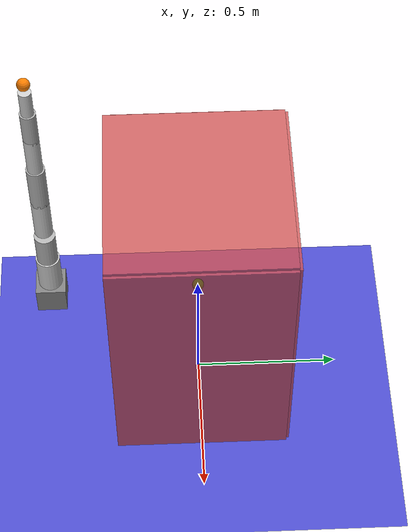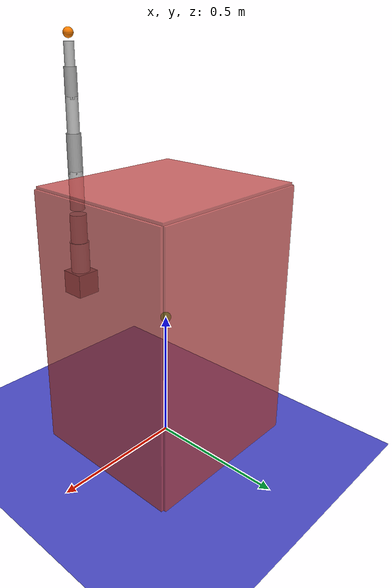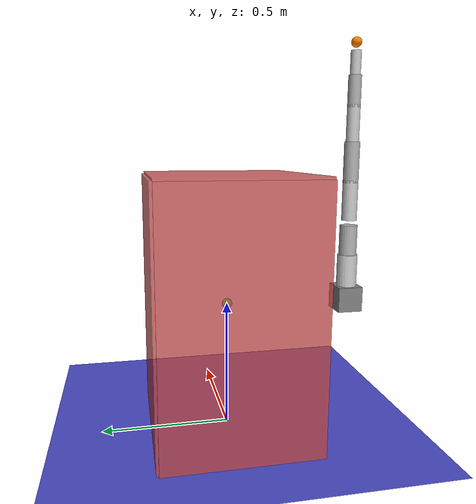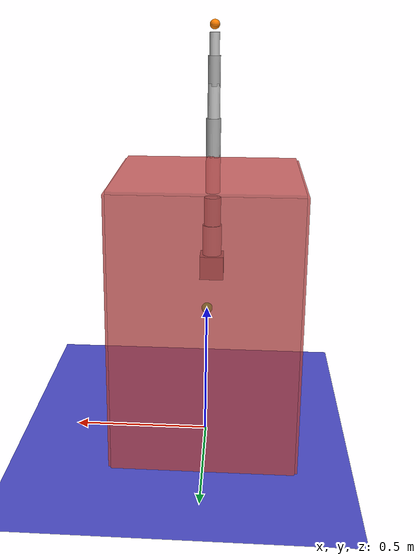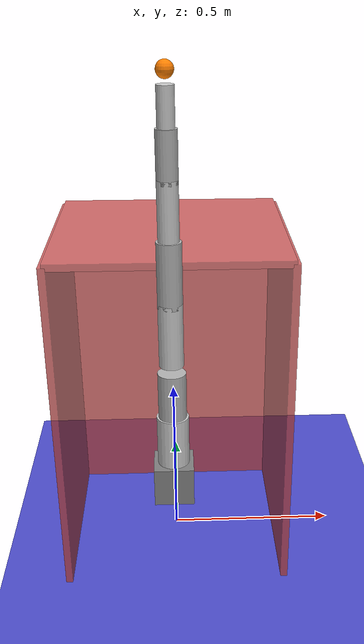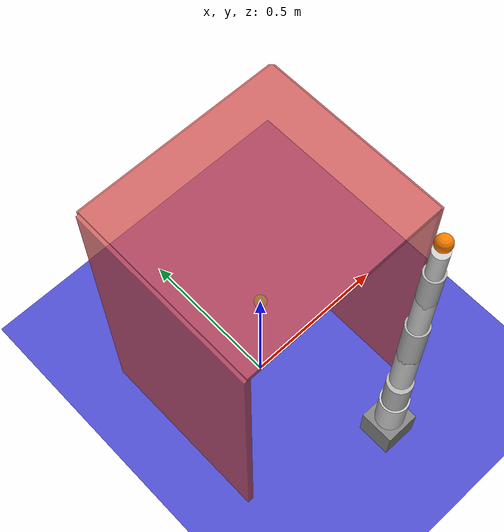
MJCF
<mujoco model="franka_tokamak">
  <include file="vessel.xml"/>
  <compiler inertiafromgeom="true"/>
  <option timestep="0.0005" gravity="0 0 -9.81"/>
  <worldbody>

    <!-- Franka base mounted at port entry -->
    <body name="base" pos="0 -0.5 0.5">
      <geom type="box" size="0.05 0.05 0.05" rgba="0.5 0.5 0.5 1"/>

      <body name="link1" pos="0 0 0.1">
        <joint name="j1" type="hinge" axis="0 0 1" range="-2.8 2.8"/>
        <geom type="cylinder" size="0.04 0.08" rgba="0.8 0.8 0.8 1"/>

        <body name="link2" pos="0 0 0.1">
          <joint name="j2" type="hinge" axis="0 1 0" range="-1.7 1.7"/>
          <geom type="cylinder" size="0.035 0.1" rgba="0.7 0.7 0.7 1"/>

          <body name="link3" pos="0 0 0.2">
            <joint name="j3" type="hinge" axis="0 0 1" range="-2.8 2.8"/>
            <geom type="cylinder" size="0.03 0.08" rgba="0.8 0.8 0.8 1"/>

            <body name="link4" pos="0 0 0.15">
              <joint name="j4" type="hinge" axis="0 1 0" range="-3.0 -0.07"/>
              <geom type="cylinder" size="0.03 0.08" rgba="0.7 0.7 0.7 1"/>

              <body name="link5" pos="0 0 0.15">
                <joint name="j5" type="hinge" axis="0 0 1" range="-2.8 2.8"/>
                <geom type="cylinder" size="0.025 0.07" rgba="0.8 0.8 0.8 1"/>

                <body name="link6" pos="0 0 0.12">
                  <joint name="j6" type="hinge" axis="0 1 0" range="-0.01 3.75"/>
                  <geom type="cylinder" size="0.025 0.06" rgba="0.7 0.7 0.7 1"/>

                  <body name="link7" pos="0 0 0.1">
                    <joint name="j7" type="hinge" axis="0 0 1" range="-2.8 2.8"/>
                    <geom type="cylinder" size="0.02 0.05" rgba="0.8 0.8 0.8 1"/>

                    <!-- End effector -->
                    <body name="ee_franka" pos="0 0 0.08">
                      <geom type="sphere" size="0.02" rgba="1.0 0.5 0.0 1"/>
                      <site name="ee_site_franka" pos="0 0 0"/>
                    </body>

                  </body>
                </body>
              </body>
            </body>
          </body>
        </body>
      </body>
    </body>
  </worldbody>

  <actuator>
    <velocity name="a1" joint="j1" kv="2"/>
    <velocity name="a2" joint="j2" kv="2"/>
    <velocity name="a3" joint="j3" kv="2"/>
    <velocity name="a4" joint="j4" kv="2"/>
    <velocity name="a5" joint="j5" kv="2"/>
    <velocity name="a6" joint="j6" kv="2"/>
    <velocity name="a7" joint="j7" kv="2"/>
  </actuator>

</mujoco>

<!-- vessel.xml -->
<mujoco model="tokamak_vessel">
  <option timestep="0.002" gravity="0 0 -9.81"/>

  <asset>
    <material name="vessel_mat" rgba="0.3 0.3 0.8 0.3"/>
    <material name="port_mat" rgba="0.8 0.3 0.3 0.8"/>
    <material name="target_mat" rgba="0.0 1.0 0.0 1.0"/>
  </asset>

  <worldbody>
    <!-- Vessel floor -->
    <geom name="floor" type="plane" size="5 5 0.1" pos="0 0 0" material="vessel_mat"/>

    <!-- Tokamak port walls (650x600mm = 0.65x0.60m) -->
    <!-- Left wall -->
    <geom name="port_left"  type="box" size="0.01 0.30 0.50" pos="-0.325 0 0.50" material="port_mat"/>
    <!-- Right wall -->
    <geom name="port_right" type="box" size="0.01 0.30 0.50" pos="0.325 0 0.50"  material="port_mat"/>
    <!-- Top wall -->
    <geom name="port_top"   type="box" size="0.325 0.30 0.01" pos="0 0 1.00"     material="port_mat"/>
    <!-- Back wall -->
    <geom name="port_back"  type="box" size="0.325 0.01 0.50" pos="0 0.30 0.50"  material="port_mat"/>

    <!-- Target marker (moved by code) -->
    <body name="target" pos="0 0 0.5">
      <geom name="target_geom" type="sphere" size="0.02" material="target_mat"/>
    </body>

  </worldbody>
</mujoco>
